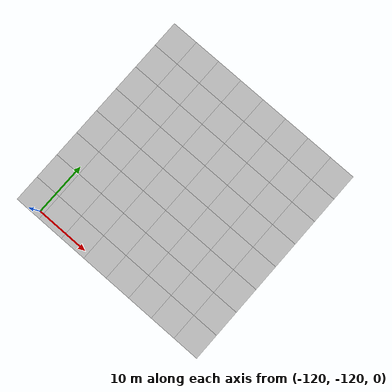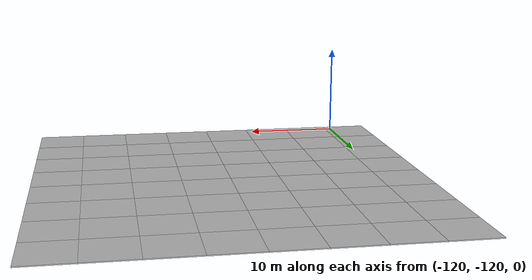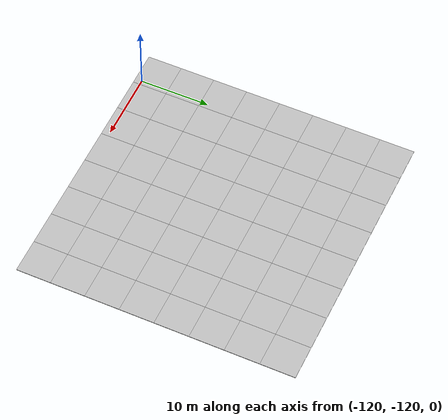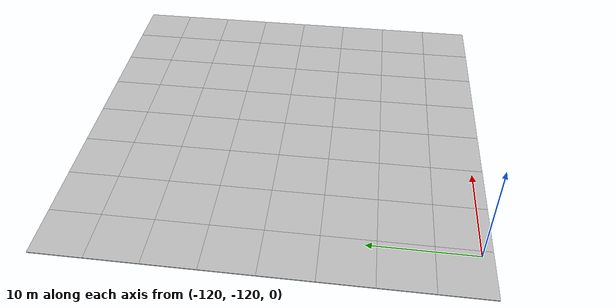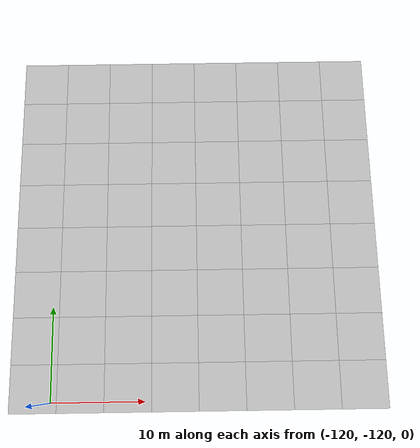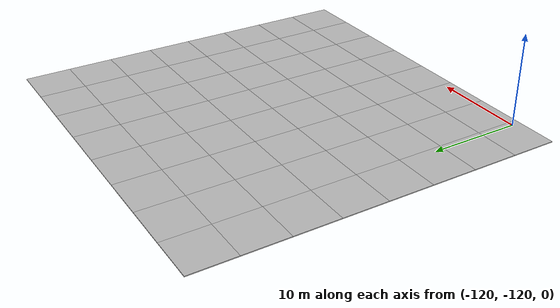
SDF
<sdf version="1.7">
 <world name="default">
  <model name="mud_plane_40x40_8">
   <model name="mud_plane_20x20">
    <model name="mud_plane">
     <static>1</static>
     <link name="link">
      <collision name="collision"><geometry><box><size>10 10 0.1</size></box></geometry></collision>
      <visual name="visual_1">
       <pose>-2.5 2.5 -0.05 0 -0 0</pose>
       <cast_shadows>0</cast_shadows>
       <geometry><box><size>5 5 0.1</size></box></geometry>
       <material>
        <script>
         <uri>model://mud_plane/materials/scripts</uri>
         <uri>model://mud_plane/materials/textures</uri>
         <name>vrc/mud</name>
        </script>
       </material>
      </visual>
      <visual name="visual_2">
       <pose>2.5 2.5 -0.05 0 -0 0</pose>
       <cast_shadows>0</cast_shadows>
       <geometry><box><size>5 5 0.1</size></box></geometry>
       <material>
        <script>
         <uri>model://mud_plane/materials/scripts</uri>
         <uri>model://mud_plane/materials/textures</uri>
         <name>vrc/mud</name>
        </script>
       </material>
      </visual>
      <visual name="visual_3">
       <pose>2.5 -2.5 -0.05 0 -0 0</pose>
       <cast_shadows>0</cast_shadows>
       <geometry><box><size>5 5 0.1</size></box></geometry>
       <material>
        <script>
         <uri>model://mud_plane/materials/scripts</uri>
         <uri>model://mud_plane/materials/textures</uri>
         <name>vrc/mud</name>
        </script>
       </material>
      </visual>
      <visual name="visual_4">
       <pose>-2.5 -2.5 -0.05 0 -0 0</pose>
       <cast_shadows>0</cast_shadows>
       <geometry><box><size>5 5 0.1</size></box></geometry>
       <material>
        <script>
         <uri>model://mud_plane/materials/scripts</uri>
         <uri>model://mud_plane/materials/textures</uri>
         <name>vrc/mud</name>
        </script>
       </material>
      </visual>
     </link>
     <pose>-4.99986 -4.99991 0 0 -0 0</pose>
    </model>
    <model name="mud_plane_0">
     <static>1</static>
     <link name="link">
      <collision name="collision"><geometry><box><size>10 10 0.1</size></box></geometry></collision>
      <visual name="visual_1">
       <pose>-2.5 2.5 -0.05 0 -0 0</pose>
       <cast_shadows>0</cast_shadows>
       <geometry><box><size>5 5 0.1</size></box></geometry>
       <material>
        <script>
         <uri>model://mud_plane/materials/scripts</uri>
         <uri>model://mud_plane/materials/textures</uri>
         <name>vrc/mud</name>
        </script>
       </material>
      </visual>
      <visual name="visual_2">
       <pose>2.5 2.5 -0.05 0 -0 0</pose>
       <cast_shadows>0</cast_shadows>
       <geometry><box><size>5 5 0.1</size></box></geometry>
       <material>
        <script>
         <uri>model://mud_plane/materials/scripts</uri>
         <uri>model://mud_plane/materials/textures</uri>
         <name>vrc/mud</name>
        </script>
       </material>
      </visual>
      <visual name="visual_3">
       <pose>2.5 -2.5 -0.05 0 -0 0</pose>
       <cast_shadows>0</cast_shadows>
       <geometry><box><size>5 5 0.1</size></box></geometry>
       <material>
        <script>
         <uri>model://mud_plane/materials/scripts</uri>
         <uri>model://mud_plane/materials/textures</uri>
         <name>vrc/mud</name>
        </script>
       </material>
      </visual>
      <visual name="visual_4">
       <pose>-2.5 -2.5 -0.05 0 -0 0</pose>
       <cast_shadows>0</cast_shadows>
       <geometry><box><size>5 5 0.1</size></box></geometry>
       <material>
        <script>
         <uri>model://mud_plane/materials/scripts</uri>
         <uri>model://mud_plane/materials/textures</uri>
         <name>vrc/mud</name>
        </script>
       </material>
      </visual>
     </link>
     <pose>-4.99946 4.99954 0 0 -0 0</pose>
    </model>
    <model name="mud_plane_1">
     <static>1</static>
     <link name="link">
      <collision name="collision"><geometry><box><size>10 10 0.1</size></box></geometry></collision>
      <visual name="visual_1">
       <pose>-2.5 2.5 -0.05 0 -0 0</pose>
       <cast_shadows>0</cast_shadows>
       <geometry><box><size>5 5 0.1</size></box></geometry>
       <material>
        <script>
         <uri>model://mud_plane/materials/scripts</uri>
         <uri>model://mud_plane/materials/textures</uri>
         <name>vrc/mud</name>
        </script>
       </material>
      </visual>
      <visual name="visual_2">
       <pose>2.5 2.5 -0.05 0 -0 0</pose>
       <cast_shadows>0</cast_shadows>
       <geometry><box><size>5 5 0.1</size></box></geometry>
       <material>
        <script>
         <uri>model://mud_plane/materials/scripts</uri>
         <uri>model://mud_plane/materials/textures</uri>
         <name>vrc/mud</name>
        </script>
       </material>
      </visual>
      <visual name="visual_3">
       <pose>2.5 -2.5 -0.05 0 -0 0</pose>
       <cast_shadows>0</cast_shadows>
       <geometry><box><size>5 5 0.1</size></box></geometry>
       <material>
        <script>
         <uri>model://mud_plane/materials/scripts</uri>
         <uri>model://mud_plane/materials/textures</uri>
         <name>vrc/mud</name>
        </script>
       </material>
      </visual>
      <visual name="visual_4">
       <pose>-2.5 -2.5 -0.05 0 -0 0</pose>
       <cast_shadows>0</cast_shadows>
       <geometry><box><size>5 5 0.1</size></box></geometry>
       <material>
        <script>
         <uri>model://mud_plane/materials/scripts</uri>
         <uri>model://mud_plane/materials/textures</uri>
         <name>vrc/mud</name>
        </script>
       </material>
      </visual>
     </link>
     <pose>4.99964 -4.99949 0 0 -0 0</pose>
    </model>
    <model name="mud_plane_2">
     <static>1</static>
     <link name="link">
      <collision name="collision"><geometry><box><size>10 10 0.1</size></box></geometry></collision>
      <visual name="visual_1">
       <pose>-2.5 2.5 -0.05 0 -0 0</pose>
       <cast_shadows>0</cast_shadows>
       <geometry><box><size>5 5 0.1</size></box></geometry>
       <material>
        <script>
         <uri>model://mud_plane/materials/scripts</uri>
         <uri>model://mud_plane/materials/textures</uri>
         <name>vrc/mud</name>
        </script>
       </material>
      </visual>
      <visual name="visual_2">
       <pose>2.5 2.5 -0.05 0 -0 0</pose>
       <cast_shadows>0</cast_shadows>
       <geometry><box><size>5 5 0.1</size></box></geometry>
       <material>
        <script>
         <uri>model://mud_plane/materials/scripts</uri>
         <uri>model://mud_plane/materials/textures</uri>
         <name>vrc/mud</name>
        </script>
       </material>
      </visual>
      <visual name="visual_3">
       <pose>2.5 -2.5 -0.05 0 -0 0</pose>
       <cast_shadows>0</cast_shadows>
       <geometry><box><size>5 5 0.1</size></box></geometry>
       <material>
        <script>
         <uri>model://mud_plane/materials/scripts</uri>
         <uri>model://mud_plane/materials/textures</uri>
         <name>vrc/mud</name>
        </script>
       </material>
      </visual>
      <visual name="visual_4">
       <pose>-2.5 -2.5 -0.05 0 -0 0</pose>
       <cast_shadows>0</cast_shadows>
       <geometry><box><size>5 5 0.1</size></box></geometry>
       <material>
        <script>
         <uri>model://mud_plane/materials/scripts</uri>
         <uri>model://mud_plane/materials/textures</uri>
         <name>vrc/mud</name>
        </script>
       </material>
      </visual>
     </link>
     <pose>4.99967 4.99986 0 0 -0 0</pose>
    </model>
    <static>0</static>
    <pose>-9.99895 9.99843 0 0 -0 0</pose>
   </model>
   <model name="mud_plane_20x20_0">
    <model name="mud_plane">
     <static>1</static>
     <link name="link">
      <collision name="collision"><geometry><box><size>10 10 0.1</size></box></geometry></collision>
      <visual name="visual_1">
       <pose>-2.5 2.5 -0.05 0 -0 0</pose>
       <cast_shadows>0</cast_shadows>
       <geometry><box><size>5 5 0.1</size></box></geometry>
       <material>
        <script>
         <uri>model://mud_plane/materials/scripts</uri>
         <uri>model://mud_plane/materials/textures</uri>
         <name>vrc/mud</name>
        </script>
       </material>
      </visual>
      <visual name="visual_2">
       <pose>2.5 2.5 -0.05 0 -0 0</pose>
       <cast_shadows>0</cast_shadows>
       <geometry><box><size>5 5 0.1</size></box></geometry>
       <material>
        <script>
         <uri>model://mud_plane/materials/scripts</uri>
         <uri>model://mud_plane/materials/textures</uri>
         <name>vrc/mud</name>
        </script>
       </material>
      </visual>
      <visual name="visual_3">
       <pose>2.5 -2.5 -0.05 0 -0 0</pose>
       <cast_shadows>0</cast_shadows>
       <geometry><box><size>5 5 0.1</size></box></geometry>
       <material>
        <script>
         <uri>model://mud_plane/materials/scripts</uri>
         <uri>model://mud_plane/materials/textures</uri>
         <name>vrc/mud</name>
        </script>
       </material>
      </visual>
      <visual name="visual_4">
       <pose>-2.5 -2.5 -0.05 0 -0 0</pose>
       <cast_shadows>0</cast_shadows>
       <geometry><box><size>5 5 0.1</size></box></geometry>
       <material>
        <script>
         <uri>model://mud_plane/materials/scripts</uri>
         <uri>model://mud_plane/materials/textures</uri>
         <name>vrc/mud</name>
        </script>
       </material>
      </visual>
     </link>
     <pose>-4.99986 -4.99991 0 0 -0 0</pose>
    </model>
    <model name="mud_plane_0">
     <static>1</static>
     <link name="link">
      <collision name="collision"><geometry><box><size>10 10 0.1</size></box></geometry></collision>
      <visual name="visual_1">
       <pose>-2.5 2.5 -0.05 0 -0 0</pose>
       <cast_shadows>0</cast_shadows>
       <geometry><box><size>5 5 0.1</size></box></geometry>
       <material>
        <script>
         <uri>model://mud_plane/materials/scripts</uri>
         <uri>model://mud_plane/materials/textures</uri>
         <name>vrc/mud</name>
        </script>
       </material>
      </visual>
      <visual name="visual_2">
       <pose>2.5 2.5 -0.05 0 -0 0</pose>
       <cast_shadows>0</cast_shadows>
       <geometry><box><size>5 5 0.1</size></box></geometry>
       <material>
        <script>
         <uri>model://mud_plane/materials/scripts</uri>
         <uri>model://mud_plane/materials/textures</uri>
         <name>vrc/mud</name>
        </script>
       </material>
      </visual>
      <visual name="visual_3">
       <pose>2.5 -2.5 -0.05 0 -0 0</pose>
       <cast_shadows>0</cast_shadows>
       <geometry><box><size>5 5 0.1</size></box></geometry>
       <material>
        <script>
         <uri>model://mud_plane/materials/scripts</uri>
         <uri>model://mud_plane/materials/textures</uri>
         <name>vrc/mud</name>
        </script>
       </material>
      </visual>
      <visual name="visual_4">
       <pose>-2.5 -2.5 -0.05 0 -0 0</pose>
       <cast_shadows>0</cast_shadows>
       <geometry><box><size>5 5 0.1</size></box></geometry>
       <material>
        <script>
         <uri>model://mud_plane/materials/scripts</uri>
         <uri>model://mud_plane/materials/textures</uri>
         <name>vrc/mud</name>
        </script>
       </material>
      </visual>
     </link>
     <pose>-4.99946 4.99954 0 0 -0 0</pose>
    </model>
    <model name="mud_plane_1">
     <static>1</static>
     <link name="link">
      <collision name="collision"><geometry><box><size>10 10 0.1</size></box></geometry></collision>
      <visual name="visual_1">
       <pose>-2.5 2.5 -0.05 0 -0 0</pose>
       <cast_shadows>0</cast_shadows>
       <geometry><box><size>5 5 0.1</size></box></geometry>
       <material>
        <script>
         <uri>model://mud_plane/materials/scripts</uri>
         <uri>model://mud_plane/materials/textures</uri>
         <name>vrc/mud</name>
        </script>
       </material>
      </visual>
      <visual name="visual_2">
       <pose>2.5 2.5 -0.05 0 -0 0</pose>
       <cast_shadows>0</cast_shadows>
       <geometry><box><size>5 5 0.1</size></box></geometry>
       <material>
        <script>
         <uri>model://mud_plane/materials/scripts</uri>
         <uri>model://mud_plane/materials/textures</uri>
         <name>vrc/mud</name>
        </script>
       </material>
      </visual>
      <visual name="visual_3">
       <pose>2.5 -2.5 -0.05 0 -0 0</pose>
       <cast_shadows>0</cast_shadows>
       <geometry><box><size>5 5 0.1</size></box></geometry>
       <material>
        <script>
         <uri>model://mud_plane/materials/scripts</uri>
         <uri>model://mud_plane/materials/textures</uri>
         <name>vrc/mud</name>
        </script>
       </material>
      </visual>
      <visual name="visual_4">
       <pose>-2.5 -2.5 -0.05 0 -0 0</pose>
       <cast_shadows>0</cast_shadows>
       <geometry><box><size>5 5 0.1</size></box></geometry>
       <material>
        <script>
         <uri>model://mud_plane/materials/scripts</uri>
         <uri>model://mud_plane/materials/textures</uri>
         <name>vrc/mud</name>
        </script>
       </material>
      </visual>
     </link>
     <pose>4.99964 -4.99949 0 0 -0 0</pose>
    </model>
    <model name="mud_plane_2">
     <static>1</static>
     <link name="link">
      <collision name="collision"><geometry><box><size>10 10 0.1</size></box></geometry></collision>
      <visual name="visual_1">
       <pose>-2.5 2.5 -0.05 0 -0 0</pose>
       <cast_shadows>0</cast_shadows>
       <geometry><box><size>5 5 0.1</size></box></geometry>
       <material>
        <script>
         <uri>model://mud_plane/materials/scripts</uri>
         <uri>model://mud_plane/materials/textures</uri>
         <name>vrc/mud</name>
        </script>
       </material>
      </visual>
      <visual name="visual_2">
       <pose>2.5 2.5 -0.05 0 -0 0</pose>
       <cast_shadows>0</cast_shadows>
       <geometry><box><size>5 5 0.1</size></box></geometry>
       <material>
        <script>
         <uri>model://mud_plane/materials/scripts</uri>
         <uri>model://mud_plane/materials/textures</uri>
         <name>vrc/mud</name>
        </script>
       </material>
      </visual>
      <visual name="visual_3">
       <pose>2.5 -2.5 -0.05 0 -0 0</pose>
       <cast_shadows>0</cast_shadows>
       <geometry><box><size>5 5 0.1</size></box></geometry>
       <material>
        <script>
         <uri>model://mud_plane/materials/scripts</uri>
         <uri>model://mud_plane/materials/textures</uri>
         <name>vrc/mud</name>
        </script>
       </material>
      </visual>
      <visual name="visual_4">
       <pose>-2.5 -2.5 -0.05 0 -0 0</pose>
       <cast_shadows>0</cast_shadows>
       <geometry><box><size>5 5 0.1</size></box></geometry>
       <material>
        <script>
         <uri>model://mud_plane/materials/scripts</uri>
         <uri>model://mud_plane/materials/textures</uri>
         <name>vrc/mud</name>
        </script>
       </material>
      </visual>
     </link>
     <pose>4.99967 4.99986 0 0 -0 0</pose>
    </model>
    <static>0</static>
    <pose>9.99933 9.9997 0 0 -0 0</pose>
   </model>
   <model name="mud_plane_20x20_1">
    <model name="mud_plane">
     <static>1</static>
     <link name="link">
      <collision name="collision"><geometry><box><size>10 10 0.1</size></box></geometry></collision>
      <visual name="visual_1">
       <pose>-2.5 2.5 -0.05 0 -0 0</pose>
       <cast_shadows>0</cast_shadows>
       <geometry><box><size>5 5 0.1</size></box></geometry>
       <material>
        <script>
         <uri>model://mud_plane/materials/scripts</uri>
         <uri>model://mud_plane/materials/textures</uri>
         <name>vrc/mud</name>
        </script>
       </material>
      </visual>
      <visual name="visual_2">
       <pose>2.5 2.5 -0.05 0 -0 0</pose>
       <cast_shadows>0</cast_shadows>
       <geometry><box><size>5 5 0.1</size></box></geometry>
       <material>
        <script>
         <uri>model://mud_plane/materials/scripts</uri>
         <uri>model://mud_plane/materials/textures</uri>
         <name>vrc/mud</name>
        </script>
       </material>
      </visual>
      <visual name="visual_3">
       <pose>2.5 -2.5 -0.05 0 -0 0</pose>
       <cast_shadows>0</cast_shadows>
       <geometry><box><size>5 5 0.1</size></box></geometry>
       <material>
        <script>
         <uri>model://mud_plane/materials/scripts</uri>
         <uri>model://mud_plane/materials/textures</uri>
         <name>vrc/mud</name>
        </script>
       </material>
      </visual>
      <visual name="visual_4">
       <pose>-2.5 -2.5 -0.05 0 -0 0</pose>
       <cast_shadows>0</cast_shadows>
       <geometry><box><size>5 5 0.1</size></box></geometry>
       <material>
        <script>
         <uri>model://mud_plane/materials/scripts</uri>
         <uri>model://mud_plane/materials/textures</uri>
         <name>vrc/mud</name>
        </script>
       </material>
      </visual>
     </link>
     <pose>-4.99986 -4.99991 0 0 -0 0</pose>
    </model>
    <model name="mud_plane_0">
     <static>1</static>
     <link name="link">
      <collision name="collision"><geometry><box><size>10 10 0.1</size></box></geometry></collision>
      <visual name="visual_1">
       <pose>-2.5 2.5 -0.05 0 -0 0</pose>
       <cast_shadows>0</cast_shadows>
       <geometry><box><size>5 5 0.1</size></box></geometry>
       <material>
        <script>
         <uri>model://mud_plane/materials/scripts</uri>
         <uri>model://mud_plane/materials/textures</uri>
         <name>vrc/mud</name>
        </script>
       </material>
      </visual>
      <visual name="visual_2">
       <pose>2.5 2.5 -0.05 0 -0 0</pose>
       <cast_shadows>0</cast_shadows>
       <geometry><box><size>5 5 0.1</size></box></geometry>
       <material>
        <script>
         <uri>model://mud_plane/materials/scripts</uri>
         <uri>model://mud_plane/materials/textures</uri>
         <name>vrc/mud</name>
        </script>
       </material>
      </visual>
      <visual name="visual_3">
       <pose>2.5 -2.5 -0.05 0 -0 0</pose>
       <cast_shadows>0</cast_shadows>
       <geometry><box><size>5 5 0.1</size></box></geometry>
       <material>
        <script>
         <uri>model://mud_plane/materials/scripts</uri>
         <uri>model://mud_plane/materials/textures</uri>
         <name>vrc/mud</name>
        </script>
       </material>
      </visual>
      <visual name="visual_4">
       <pose>-2.5 -2.5 -0.05 0 -0 0</pose>
       <cast_shadows>0</cast_shadows>
       <geometry><box><size>5 5 0.1</size></box></geometry>
       <material>
        <script>
         <uri>model://mud_plane/materials/scripts</uri>
         <uri>model://mud_plane/materials/textures</uri>
         <name>vrc/mud</name>
        </script>
       </material>
      </visual>
     </link>
     <pose>-4.99946 4.99954 0 0 -0 0</pose>
    </model>
    <model name="mud_plane_1">
     <static>1</static>
     <link name="link">
      <collision name="collision"><geometry><box><size>10 10 0.1</size></box></geometry></collision>
      <visual name="visual_1">
       <pose>-2.5 2.5 -0.05 0 -0 0</pose>
       <cast_shadows>0</cast_shadows>
       <geometry><box><size>5 5 0.1</size></box></geometry>
       <material>
        <script>
         <uri>model://mud_plane/materials/scripts</uri>
         <uri>model://mud_plane/materials/textures</uri>
         <name>vrc/mud</name>
        </script>
       </material>
      </visual>
      <visual name="visual_2">
       <pose>2.5 2.5 -0.05 0 -0 0</pose>
       <cast_shadows>0</cast_shadows>
       <geometry><box><size>5 5 0.1</size></box></geometry>
       <material>
        <script>
         <uri>model://mud_plane/materials/scripts</uri>
         <uri>model://mud_plane/materials/textures</uri>
         <name>vrc/mud</name>
        </script>
       </material>
      </visual>
      <visual name="visual_3">
       <pose>2.5 -2.5 -0.05 0 -0 0</pose>
       <cast_shadows>0</cast_shadows>
       <geometry><box><size>5 5 0.1</size></box></geometry>
       <material>
        <script>
         <uri>model://mud_plane/materials/scripts</uri>
         <uri>model://mud_plane/materials/textures</uri>
         <name>vrc/mud</name>
        </script>
       </material>
      </visual>
      <visual name="visual_4">
       <pose>-2.5 -2.5 -0.05 0 -0 0</pose>
       <cast_shadows>0</cast_shadows>
       <geometry><box><size>5 5 0.1</size></box></geometry>
       <material>
        <script>
         <uri>model://mud_plane/materials/scripts</uri>
         <uri>model://mud_plane/materials/textures</uri>
         <name>vrc/mud</name>
        </script>
       </material>
      </visual>
     </link>
     <pose>4.99964 -4.99949 0 0 -0 0</pose>
    </model>
    <model name="mud_plane_2">
     <static>1</static>
     <link name="link">
      <collision name="collision"><geometry><box><size>10 10 0.1</size></box></geometry></collision>
      <visual name="visual_1">
       <pose>-2.5 2.5 -0.05 0 -0 0</pose>
       <cast_shadows>0</cast_shadows>
       <geometry><box><size>5 5 0.1</size></box></geometry>
       <material>
        <script>
         <uri>model://mud_plane/materials/scripts</uri>
         <uri>model://mud_plane/materials/textures</uri>
         <name>vrc/mud</name>
        </script>
       </material>
      </visual>
      <visual name="visual_2">
       <pose>2.5 2.5 -0.05 0 -0 0</pose>
       <cast_shadows>0</cast_shadows>
       <geometry><box><size>5 5 0.1</size></box></geometry>
       <material>
        <script>
         <uri>model://mud_plane/materials/scripts</uri>
         <uri>model://mud_plane/materials/textures</uri>
         <name>vrc/mud</name>
        </script>
       </material>
      </visual>
      <visual name="visual_3">
       <pose>2.5 -2.5 -0.05 0 -0 0</pose>
       <cast_shadows>0</cast_shadows>
       <geometry><box><size>5 5 0.1</size></box></geometry>
       <material>
        <script>
         <uri>model://mud_plane/materials/scripts</uri>
         <uri>model://mud_plane/materials/textures</uri>
         <name>vrc/mud</name>
        </script>
       </material>
      </visual>
      <visual name="visual_4">
       <pose>-2.5 -2.5 -0.05 0 -0 0</pose>
       <cast_shadows>0</cast_shadows>
       <geometry><box><size>5 5 0.1</size></box></geometry>
       <material>
        <script>
         <uri>model://mud_plane/materials/scripts</uri>
         <uri>model://mud_plane/materials/textures</uri>
         <name>vrc/mud</name>
        </script>
       </material>
      </visual>
     </link>
     <pose>4.99967 4.99986 0 0 -0 0</pose>
    </model>
    <static>0</static>
    <pose>9.9993 -9.99877 0 0 -0 0</pose>
   </model>
   <model name="mud_plane_20x20_2">
    <model name="mud_plane">
     <static>1</static>
     <link name="link">
      <collision name="collision"><geometry><box><size>10 10 0.1</size></box></geometry></collision>
      <visual name="visual_1">
       <pose>-2.5 2.5 -0.05 0 -0 0</pose>
       <cast_shadows>0</cast_shadows>
       <geometry><box><size>5 5 0.1</size></box></geometry>
       <material>
        <script>
         <uri>model://mud_plane/materials/scripts</uri>
         <uri>model://mud_plane/materials/textures</uri>
         <name>vrc/mud</name>
        </script>
       </material>
      </visual>
      <visual name="visual_2">
       <pose>2.5 2.5 -0.05 0 -0 0</pose>
       <cast_shadows>0</cast_shadows>
       <geometry><box><size>5 5 0.1</size></box></geometry>
       <material>
        <script>
         <uri>model://mud_plane/materials/scripts</uri>
         <uri>model://mud_plane/materials/textures</uri>
         <name>vrc/mud</name>
        </script>
       </material>
      </visual>
      <visual name="visual_3">
       <pose>2.5 -2.5 -0.05 0 -0 0</pose>
       <cast_shadows>0</cast_shadows>
       <geometry><box><size>5 5 0.1</size></box></geometry>
       <material>
        <script>
         <uri>model://mud_plane/materials/scripts</uri>
         <uri>model://mud_plane/materials/textures</uri>
         <name>vrc/mud</name>
        </script>
       </material>
      </visual>
      <visual name="visual_4">
       <pose>-2.5 -2.5 -0.05 0 -0 0</pose>
       <cast_shadows>0</cast_shadows>
       <geometry><box><size>5 5 0.1</size></box></geometry>
       <material>
        <script>
         <uri>model://mud_plane/materials/scripts</uri>
         <uri>model://mud_plane/materials/textures</uri>
         <name>vrc/mud</name>
        </script>
       </material>
      </visual>
     </link>
     <pose>-4.99986 -4.99991 0 0 -0 0</pose>
    </model>
    <model name="mud_plane_0">
     <static>1</static>
     <link name="link">
      <collision name="collision"><geometry><box><size>10 10 0.1</size></box></geometry></collision>
      <visual name="visual_1">
       <pose>-2.5 2.5 -0.05 0 -0 0</pose>
       <cast_shadows>0</cast_shadows>
       <geometry><box><size>5 5 0.1</size></box></geometry>
       <material>
        <script>
         <uri>model://mud_plane/materials/scripts</uri>
         <uri>model://mud_plane/materials/textures</uri>
         <name>vrc/mud</name>
        </script>
       </material>
      </visual>
      <visual name="visual_2">
       <pose>2.5 2.5 -0.05 0 -0 0</pose>
       <cast_shadows>0</cast_shadows>
       <geometry><box><size>5 5 0.1</size></box></geometry>
       <material>
        <script>
         <uri>model://mud_plane/materials/scripts</uri>
         <uri>model://mud_plane/materials/textures</uri>
         <name>vrc/mud</name>
        </script>
       </material>
      </visual>
      <visual name="visual_3">
       <pose>2.5 -2.5 -0.05 0 -0 0</pose>
       <cast_shadows>0</cast_shadows>
       <geometry><box><size>5 5 0.1</size></box></geometry>
       <material>
        <script>
         <uri>model://mud_plane/materials/scripts</uri>
         <uri>model://mud_plane/materials/textures</uri>
         <name>vrc/mud</name>
        </script>
       </material>
      </visual>
      <visual name="visual_4">
       <pose>-2.5 -2.5 -0.05 0 -0 0</pose>
       <cast_shadows>0</cast_shadows>
       <geometry><box><size>5 5 0.1</size></box></geometry>
       <material>
        <script>
         <uri>model://mud_plane/materials/scripts</uri>
         <uri>model://mud_plane/materials/textures</uri>
         <name>vrc/mud</name>
        </script>
       </material>
      </visual>
     </link>
     <pose>-4.99946 4.99954 0 0 -0 0</pose>
    </model>
    <model name="mud_plane_1">
     <static>1</static>
     <link name="link">
      <collision name="collision"><geometry><box><size>10 10 0.1</size></box></geometry></collision>
      <visual name="visual_1">
       <pose>-2.5 2.5 -0.05 0 -0 0</pose>
       <cast_shadows>0</cast_shadows>
       <geometry><box><size>5 5 0.1</size></box></geometry>
       <material>
        <script>
         <uri>model://mud_plane/materials/scripts</uri>
         <uri>model://mud_plane/materials/textures</uri>
         <name>vrc/mud</name>
        </script>
       </material>
      </visual>
      <visual name="visual_2">
       <pose>2.5 2.5 -0.05 0 -0 0</pose>
       <cast_shadows>0</cast_shadows>
       <geometry><box><size>5 5 0.1</size></box></geometry>
       <material>
        <script>
         <uri>model://mud_plane/materials/scripts</uri>
         <uri>model://mud_plane/materials/textures</uri>
         <name>vrc/mud</name>
        </script>
       </material>
      </visual>
      <visual name="visual_3">
       <pose>2.5 -2.5 -0.05 0 -0 0</pose>
       <cast_shadows>0</cast_shadows>
       <geometry><box><size>5 5 0.1</size></box></geometry>
       <material>
        <script>
         <uri>model://mud_plane/materials/scripts</uri>
         <uri>model://mud_plane/materials/textures</uri>
         <name>vrc/mud</name>
        </script>
       </material>
      </visual>
      <visual name="visual_4">
       <pose>-2.5 -2.5 -0.05 0 -0 0</pose>
       <cast_shadows>0</cast_shadows>
       <geometry><box><size>5 5 0.1</size></box></geometry>
       <material>
        <script>
         <uri>model://mud_plane/materials/scripts</uri>
         <uri>model://mud_plane/materials/textures</uri>
         <name>vrc/mud</name>
        </script>
       </material>
      </visual>
     </link>
     <pose>4.99964 -4.99949 0 0 -0 0</pose>
    </model>
    <model name="mud_plane_2">
     <static>1</static>
     <link name="link">
      <collision name="collision"><geometry><box><size>10 10 0.1</size></box></geometry></collision>
      <visual name="visual_1">
       <pose>-2.5 2.5 -0.05 0 -0 0</pose>
       <cast_shadows>0</cast_shadows>
       <geometry><box><size>5 5 0.1</size></box></geometry>
       <material>
        <script>
         <uri>model://mud_plane/materials/scripts</uri>
         <uri>model://mud_plane/materials/textures</uri>
         <name>vrc/mud</name>
        </script>
       </material>
      </visual>
      <visual name="visual_2">
       <pose>2.5 2.5 -0.05 0 -0 0</pose>
       <cast_shadows>0</cast_shadows>
       <geometry><box><size>5 5 0.1</size></box></geometry>
       <material>
        <script>
         <uri>model://mud_plane/materials/scripts</uri>
         <uri>model://mud_plane/materials/textures</uri>
         <name>vrc/mud</name>
        </script>
       </material>
      </visual>
      <visual name="visual_3">
       <pose>2.5 -2.5 -0.05 0 -0 0</pose>
       <cast_shadows>0</cast_shadows>
       <geometry><box><size>5 5 0.1</size></box></geometry>
       <material>
        <script>
         <uri>model://mud_plane/materials/scripts</uri>
         <uri>model://mud_plane/materials/textures</uri>
         <name>vrc/mud</name>
        </script>
       </material>
      </visual>
      <visual name="visual_4">
       <pose>-2.5 -2.5 -0.05 0 -0 0</pose>
       <cast_shadows>0</cast_shadows>
       <geometry><box><size>5 5 0.1</size></box></geometry>
       <material>
        <script>
         <uri>model://mud_plane/materials/scripts</uri>
         <uri>model://mud_plane/materials/textures</uri>
         <name>vrc/mud</name>
        </script>
       </material>
      </visual>
     </link>
     <pose>4.99967 4.99986 0 0 -0 0</pose>
    </model>
    <static>0</static>
    <pose>-9.99969 -9.99935 0 0 -0 0</pose>
   </model>
   <static>0</static>
   <pose>-104.37 -101.045 0 0 -0 0</pose>
  </model>
 </world>
</sdf>
